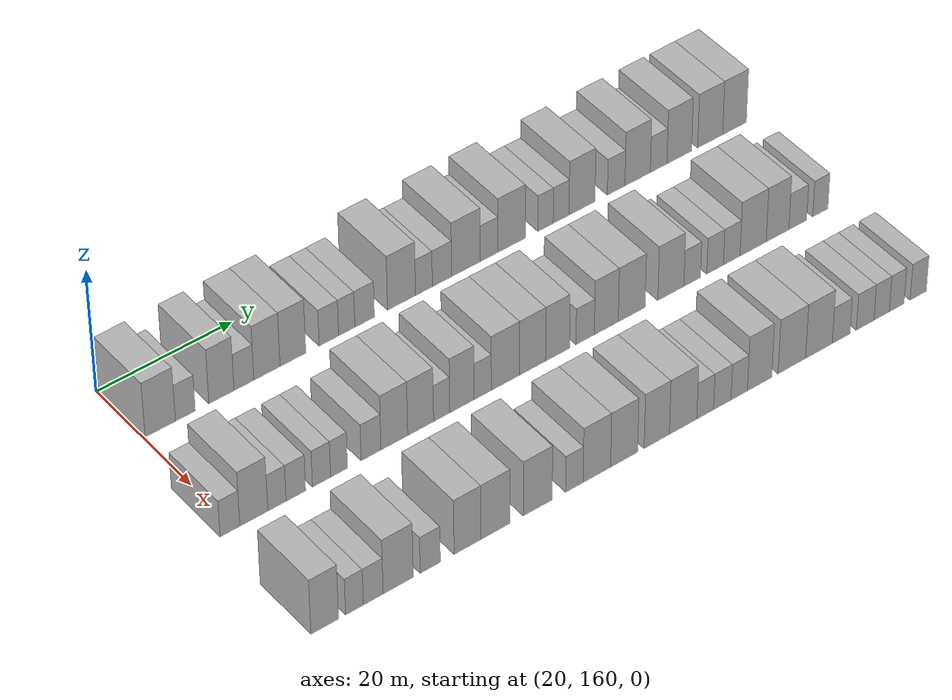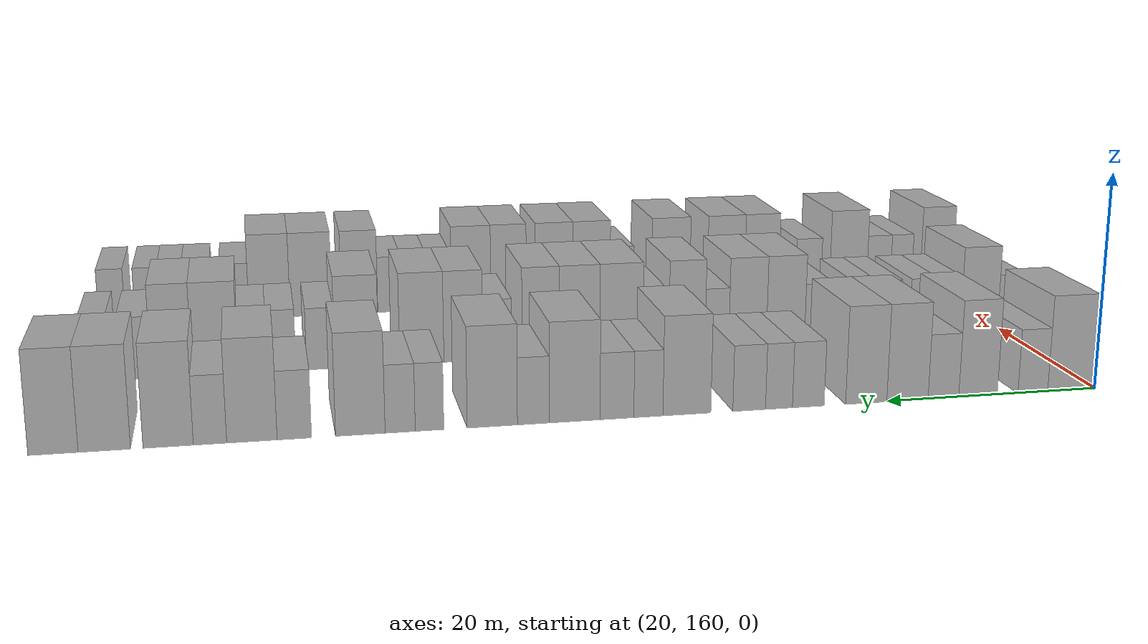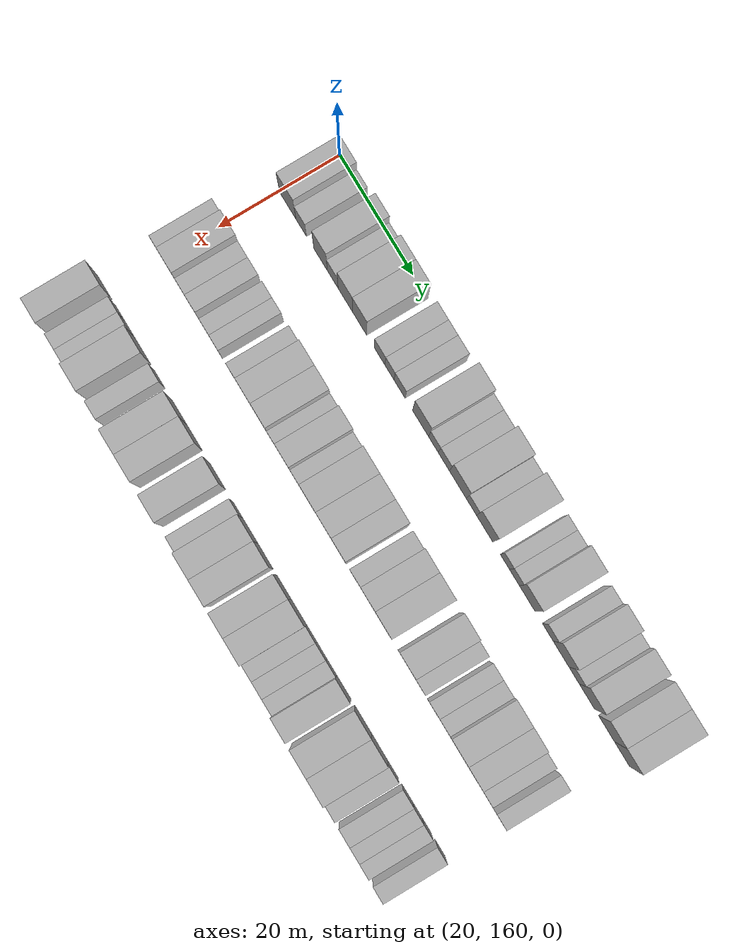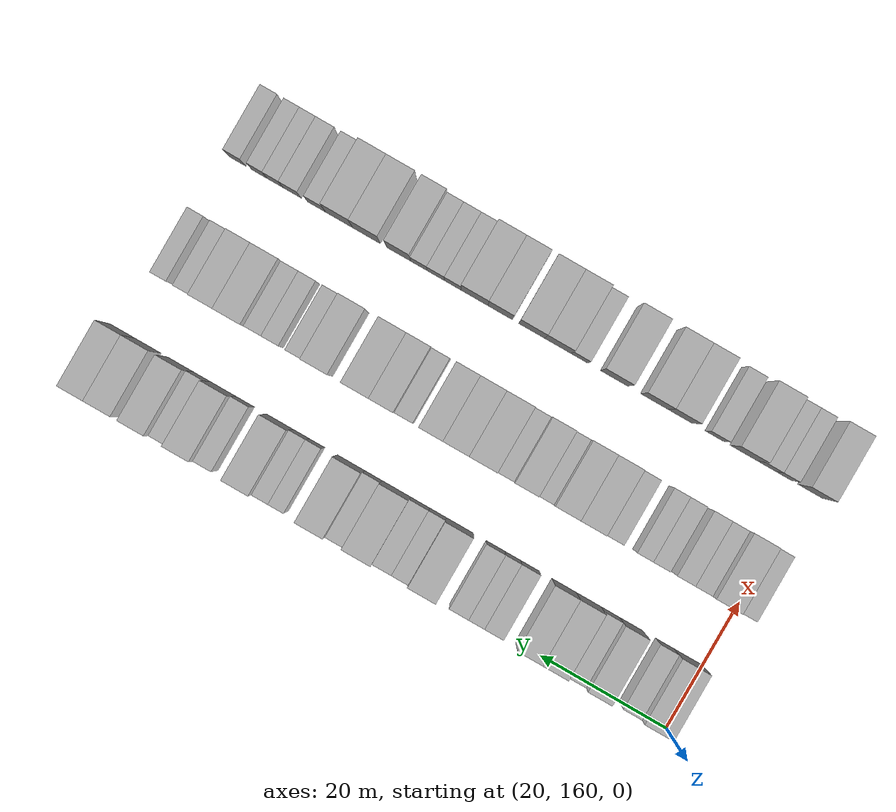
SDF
<sdf version="1.6">
 <world name="default">
  <model name="building_124">
   <static>1</static>
   <pose>25.0000 162.4225 0 0.000000 0.000000 0.000000</pose>
   <link name="link">
    <pose>0 0 4.50 0 0 0</pose>
    <collision name="collision"><geometry><box><size>10.0000 4.4084 9.0000</size></box></geometry></collision>
    <visual name="visual">
     <cast_shadows>0</cast_shadows>
     <geometry><box><size>10.0000 4.4084 9.0000</size></box></geometry>
     <material>
      <script>
       <uri>model://HANNAS_wall/materials/scripts</uri>
       <uri>model://HANNAS_wall/materials/textures</uri>
       <name>vrc/HANNAS_wall</name>
      </script>
     </material>
    </visual>
   </link>
  </model>
  <model name="building_125">
   <static>1</static>
   <pose>25.0000 166.0739 0 0.000000 0.000000 0.000000</pose>
   <link name="link">
    <pose>0 0 3.00 0 0 0</pose>
    <collision name="collision"><geometry><box><size>10.0000 2.8943 6.0000</size></box></geometry></collision>
    <visual name="visual">
     <cast_shadows>0</cast_shadows>
     <geometry><box><size>10.0000 2.8943 6.0000</size></box></geometry>
     <material>
      <script>
       <uri>model://HANNAS_wall/materials/scripts</uri>
       <uri>model://HANNAS_wall/materials/textures</uri>
       <name>vrc/HANNAS_wall</name>
      </script>
     </material>
    </visual>
   </link>
  </model>
  <model name="building_126">
   <static>1</static>
   <pose>25.0000 171.3727 0 0.000000 0.000000 0.000000</pose>
   <link name="link">
    <pose>0 0 4.50 0 0 0</pose>
    <collision name="collision"><geometry><box><size>10.0000 3.7033 9.0000</size></box></geometry></collision>
    <visual name="visual">
     <cast_shadows>0</cast_shadows>
     <geometry><box><size>10.0000 3.7033 9.0000</size></box></geometry>
     <material>
      <script>
       <uri>model://HANNAS_wall/materials/scripts</uri>
       <uri>model://HANNAS_wall/materials/textures</uri>
       <name>vrc/HANNAS_wall</name>
      </script>
     </material>
    </visual>
   </link>
  </model>
  <model name="building_127">
   <static>1</static>
   <pose>25.0000 174.6883 0 0.000000 0.000000 0.000000</pose>
   <link name="link">
    <pose>0 0 3.00 0 0 0</pose>
    <collision name="collision"><geometry><box><size>10.0000 2.9280 6.0000</size></box></geometry></collision>
    <visual name="visual">
     <cast_shadows>0</cast_shadows>
     <geometry><box><size>10.0000 2.9280 6.0000</size></box></geometry>
     <material>
      <script>
       <uri>model://HANNAS_wall/materials/scripts</uri>
       <uri>model://HANNAS_wall/materials/textures</uri>
       <name>vrc/HANNAS_wall</name>
      </script>
     </material>
    </visual>
   </link>
  </model>
  <model name="building_128">
   <static>1</static>
   <pose>25.0000 178.1057 0 0.000000 0.000000 0.000000</pose>
   <link name="link">
    <pose>0 0 4.50 0 0 0</pose>
    <collision name="collision"><geometry><box><size>10.0000 3.9068 9.0000</size></box></geometry></collision>
    <visual name="visual">
     <cast_shadows>0</cast_shadows>
     <geometry><box><size>10.0000 3.9068 9.0000</size></box></geometry>
     <material>
      <script>
       <uri>model://HANNAS_wall/materials/scripts</uri>
       <uri>model://HANNAS_wall/materials/textures</uri>
       <name>vrc/HANNAS_wall</name>
      </script>
     </material>
    </visual>
   </link>
  </model>
  <model name="building_129">
   <static>1</static>
   <pose>25.0000 181.9875 0 0.000000 0.000000 0.000000</pose>
   <link name="link">
    <pose>0 0 4.50 0 0 0</pose>
    <collision name="collision"><geometry><box><size>10.0000 3.8569 9.0000</size></box></geometry></collision>
    <visual name="visual">
     <cast_shadows>0</cast_shadows>
     <geometry><box><size>10.0000 3.8569 9.0000</size></box></geometry>
     <material>
      <script>
       <uri>model://HANNAS_wall/materials/scripts</uri>
       <uri>model://HANNAS_wall/materials/textures</uri>
       <name>vrc/HANNAS_wall</name>
      </script>
     </material>
    </visual>
   </link>
  </model>
  <model name="building_130">
   <static>1</static>
   <pose>25.0000 187.3841 0 0.000000 0.000000 0.000000</pose>
   <link name="link">
    <pose>0 0 3.00 0 0 0</pose>
    <collision name="collision"><geometry><box><size>10.0000 2.9363 6.0000</size></box></geometry></collision>
    <visual name="visual">
     <cast_shadows>0</cast_shadows>
     <geometry><box><size>10.0000 2.9363 6.0000</size></box></geometry>
     <material>
      <script>
       <uri>model://HANNAS_wall/materials/scripts</uri>
       <uri>model://HANNAS_wall/materials/textures</uri>
       <name>vrc/HANNAS_wall</name>
      </script>
     </material>
    </visual>
   </link>
  </model>
  <model name="building_131">
   <static>1</static>
   <pose>25.0000 190.0873 0 0.000000 0.000000 0.000000</pose>
   <link name="link">
    <pose>0 0 3.00 0 0 0</pose>
    <collision name="collision"><geometry><box><size>10.0000 2.4700 6.0000</size></box></geometry></collision>
    <visual name="visual">
     <cast_shadows>0</cast_shadows>
     <geometry><box><size>10.0000 2.4700 6.0000</size></box></geometry>
     <material>
      <script>
       <uri>model://HANNAS_wall/materials/scripts</uri>
       <uri>model://HANNAS_wall/materials/textures</uri>
       <name>vrc/HANNAS_wall</name>
      </script>
     </material>
    </visual>
   </link>
  </model>
  <model name="building_132">
   <static>1</static>
   <pose>25.0000 192.8141 0 0.000000 0.000000 0.000000</pose>
   <link name="link">
    <pose>0 0 3.00 0 0 0</pose>
    <collision name="collision"><geometry><box><size>10.0000 2.9837 6.0000</size></box></geometry></collision>
    <visual name="visual">
     <cast_shadows>0</cast_shadows>
     <geometry><box><size>10.0000 2.9837 6.0000</size></box></geometry>
     <material>
      <script>
       <uri>model://HANNAS_wall/materials/scripts</uri>
       <uri>model://HANNAS_wall/materials/textures</uri>
       <name>vrc/HANNAS_wall</name>
      </script>
     </material>
    </visual>
   </link>
  </model>
  <model name="building_133">
   <static>1</static>
   <pose>25.0000 198.4626 0 0.000000 0.000000 0.000000</pose>
   <link name="link">
    <pose>0 0 4.50 0 0 0</pose>
    <collision name="collision"><geometry><box><size>10.0000 4.3132 9.0000</size></box></geometry></collision>
    <visual name="visual">
     <cast_shadows>0</cast_shadows>
     <geometry><box><size>10.0000 4.3132 9.0000</size></box></geometry>
     <material>
      <script>
       <uri>model://HANNAS_wall/materials/scripts</uri>
       <uri>model://HANNAS_wall/materials/textures</uri>
       <name>vrc/HANNAS_wall</name>
      </script>
     </material>
    </visual>
   </link>
  </model>
  <model name="building_134">
   <static>1</static>
   <pose>25.0000 201.9174 0 0.000000 0.000000 0.000000</pose>
   <link name="link">
    <pose>0 0 3.00 0 0 0</pose>
    <collision name="collision"><geometry><box><size>10.0000 2.5964 6.0000</size></box></geometry></collision>
    <visual name="visual">
     <cast_shadows>0</cast_shadows>
     <geometry><box><size>10.0000 2.5964 6.0000</size></box></geometry>
     <material>
      <script>
       <uri>model://HANNAS_wall/materials/scripts</uri>
       <uri>model://HANNAS_wall/materials/textures</uri>
       <name>vrc/HANNAS_wall</name>
      </script>
     </material>
    </visual>
   </link>
  </model>
  <model name="building_135">
   <static>1</static>
   <pose>25.0000 204.7140 0 0.000000 0.000000 0.000000</pose>
   <link name="link">
    <pose>0 0 3.00 0 0 0</pose>
    <collision name="collision"><geometry><box><size>10.0000 2.9968 6.0000</size></box></geometry></collision>
    <visual name="visual">
     <cast_shadows>0</cast_shadows>
     <geometry><box><size>10.0000 2.9968 6.0000</size></box></geometry>
     <material>
      <script>
       <uri>model://HANNAS_wall/materials/scripts</uri>
       <uri>model://HANNAS_wall/materials/textures</uri>
       <name>vrc/HANNAS_wall</name>
      </script>
     </material>
    </visual>
   </link>
  </model>
  <model name="building_136">
   <static>1</static>
   <pose>25.0000 208.4489 0 0.000000 0.000000 0.000000</pose>
   <link name="link">
    <pose>0 0 4.50 0 0 0</pose>
    <collision name="collision"><geometry><box><size>10.0000 4.4731 9.0000</size></box></geometry></collision>
    <visual name="visual">
     <cast_shadows>0</cast_shadows>
     <geometry><box><size>10.0000 4.4731 9.0000</size></box></geometry>
     <material>
      <script>
       <uri>model://HANNAS_wall/materials/scripts</uri>
       <uri>model://HANNAS_wall/materials/textures</uri>
       <name>vrc/HANNAS_wall</name>
      </script>
     </material>
    </visual>
   </link>
  </model>
  <model name="building_137">
   <static>1</static>
   <pose>25.0000 212.0654 0 0.000000 0.000000 0.000000</pose>
   <link name="link">
    <pose>0 0 3.00 0 0 0</pose>
    <collision name="collision"><geometry><box><size>10.0000 2.7599 6.0000</size></box></geometry></collision>
    <visual name="visual">
     <cast_shadows>0</cast_shadows>
     <geometry><box><size>10.0000 2.7599 6.0000</size></box></geometry>
     <material>
      <script>
       <uri>model://HANNAS_wall/materials/scripts</uri>
       <uri>model://HANNAS_wall/materials/textures</uri>
       <name>vrc/HANNAS_wall</name>
      </script>
     </material>
    </visual>
   </link>
  </model>
  <model name="building_138">
   <static>1</static>
   <pose>25.0000 215.6119 0 0.000000 0.000000 0.000000</pose>
   <link name="link">
    <pose>0 0 4.50 0 0 0</pose>
    <collision name="collision"><geometry><box><size>10.0000 4.3330 9.0000</size></box></geometry></collision>
    <visual name="visual">
     <cast_shadows>0</cast_shadows>
     <geometry><box><size>10.0000 4.3330 9.0000</size></box></geometry>
     <material>
      <script>
       <uri>model://HANNAS_wall/materials/scripts</uri>
       <uri>model://HANNAS_wall/materials/textures</uri>
       <name>vrc/HANNAS_wall</name>
      </script>
     </material>
    </visual>
   </link>
  </model>
  <model name="building_139">
   <static>1</static>
   <pose>25.0000 220.9933 0 0.000000 0.000000 0.000000</pose>
   <link name="link">
    <pose>0 0 3.00 0 0 0</pose>
    <collision name="collision"><geometry><box><size>10.0000 2.4299 6.0000</size></box></geometry></collision>
    <visual name="visual">
     <cast_shadows>0</cast_shadows>
     <geometry><box><size>10.0000 2.4299 6.0000</size></box></geometry>
     <material>
      <script>
       <uri>model://HANNAS_wall/materials/scripts</uri>
       <uri>model://HANNAS_wall/materials/textures</uri>
       <name>vrc/HANNAS_wall</name>
      </script>
     </material>
    </visual>
   </link>
  </model>
  <model name="building_140">
   <static>1</static>
   <pose>25.0000 223.4822 0 0.000000 0.000000 0.000000</pose>
   <link name="link">
    <pose>0 0 3.00 0 0 0</pose>
    <collision name="collision"><geometry><box><size>10.0000 2.5479 6.0000</size></box></geometry></collision>
    <visual name="visual">
     <cast_shadows>0</cast_shadows>
     <geometry><box><size>10.0000 2.5479 6.0000</size></box></geometry>
     <material>
      <script>
       <uri>model://HANNAS_wall/materials/scripts</uri>
       <uri>model://HANNAS_wall/materials/textures</uri>
       <name>vrc/HANNAS_wall</name>
      </script>
     </material>
    </visual>
   </link>
  </model>
  <model name="building_141">
   <static>1</static>
   <pose>25.0000 226.8352 0 0.000000 0.000000 0.000000</pose>
   <link name="link">
    <pose>0 0 4.50 0 0 0</pose>
    <collision name="collision"><geometry><box><size>10.0000 4.1581 9.0000</size></box></geometry></collision>
    <visual name="visual">
     <cast_shadows>0</cast_shadows>
     <geometry><box><size>10.0000 4.1581 9.0000</size></box></geometry>
     <material>
      <script>
       <uri>model://HANNAS_wall/materials/scripts</uri>
       <uri>model://HANNAS_wall/materials/textures</uri>
       <name>vrc/HANNAS_wall</name>
      </script>
     </material>
    </visual>
   </link>
  </model>
  <model name="building_142">
   <static>1</static>
   <pose>25.0000 232.3383 0 0.000000 0.000000 0.000000</pose>
   <link name="link">
    <pose>0 0 3.00 0 0 0</pose>
    <collision name="collision"><geometry><box><size>10.0000 2.8480 6.0000</size></box></geometry></collision>
    <visual name="visual">
     <cast_shadows>0</cast_shadows>
     <geometry><box><size>10.0000 2.8480 6.0000</size></box></geometry>
     <material>
      <script>
       <uri>model://HANNAS_wall/materials/scripts</uri>
       <uri>model://HANNAS_wall/materials/textures</uri>
       <name>vrc/HANNAS_wall</name>
      </script>
     </material>
    </visual>
   </link>
  </model>
  <model name="building_143">
   <static>1</static>
   <pose>25.0000 235.8276 0 0.000000 0.000000 0.000000</pose>
   <link name="link">
    <pose>0 0 4.50 0 0 0</pose>
    <collision name="collision"><geometry><box><size>10.0000 4.1306 9.0000</size></box></geometry></collision>
    <visual name="visual">
     <cast_shadows>0</cast_shadows>
     <geometry><box><size>10.0000 4.1306 9.0000</size></box></geometry>
     <material>
      <script>
       <uri>model://HANNAS_wall/materials/scripts</uri>
       <uri>model://HANNAS_wall/materials/textures</uri>
       <name>vrc/HANNAS_wall</name>
      </script>
     </material>
    </visual>
   </link>
  </model>
  <model name="building_144">
   <static>1</static>
   <pose>25.0000 239.2464 0 0.000000 0.000000 0.000000</pose>
   <link name="link">
    <pose>0 0 3.00 0 0 0</pose>
    <collision name="collision"><geometry><box><size>10.0000 2.7071 6.0000</size></box></geometry></collision>
    <visual name="visual">
     <cast_shadows>0</cast_shadows>
     <geometry><box><size>10.0000 2.7071 6.0000</size></box></geometry>
     <material>
      <script>
       <uri>model://HANNAS_wall/materials/scripts</uri>
       <uri>model://HANNAS_wall/materials/textures</uri>
       <name>vrc/HANNAS_wall</name>
      </script>
     </material>
    </visual>
   </link>
  </model>
  <model name="building_145">
   <static>1</static>
   <pose>25.0000 242.6282 0 0.000000 0.000000 0.000000</pose>
   <link name="link">
    <pose>0 0 4.50 0 0 0</pose>
    <collision name="collision"><geometry><box><size>10.0000 4.0564 9.0000</size></box></geometry></collision>
    <visual name="visual">
     <cast_shadows>0</cast_shadows>
     <geometry><box><size>10.0000 4.0564 9.0000</size></box></geometry>
     <material>
      <script>
       <uri>model://HANNAS_wall/materials/scripts</uri>
       <uri>model://HANNAS_wall/materials/textures</uri>
       <name>vrc/HANNAS_wall</name>
      </script>
     </material>
    </visual>
   </link>
  </model>
  <model name="building_146">
   <static>1</static>
   <pose>25.0000 247.7382 0 0.000000 0.000000 0.000000</pose>
   <link name="link">
    <pose>0 0 4.50 0 0 0</pose>
    <collision name="collision"><geometry><box><size>10.0000 4.1638 9.0000</size></box></geometry></collision>
    <visual name="visual">
     <cast_shadows>0</cast_shadows>
     <geometry><box><size>10.0000 4.1638 9.0000</size></box></geometry>
     <material>
      <script>
       <uri>model://HANNAS_wall/materials/scripts</uri>
       <uri>model://HANNAS_wall/materials/textures</uri>
       <name>vrc/HANNAS_wall</name>
      </script>
     </material>
    </visual>
   </link>
  </model>
  <model name="building_147">
   <static>1</static>
   <pose>25.0000 251.7939 0 0.000000 0.000000 0.000000</pose>
   <link name="link">
    <pose>0 0 4.50 0 0 0</pose>
    <collision name="collision"><geometry><box><size>10.0000 3.9475 9.0000</size></box></geometry></collision>
    <visual name="visual">
     <cast_shadows>0</cast_shadows>
     <geometry><box><size>10.0000 3.9475 9.0000</size></box></geometry>
     <material>
      <script>
       <uri>model://HANNAS_wall/materials/scripts</uri>
       <uri>model://HANNAS_wall/materials/textures</uri>
       <name>vrc/HANNAS_wall</name>
      </script>
     </material>
    </visual>
   </link>
  </model>
  <model name="building_297">
   <static>1</static>
   <pose>44.0000 159.2605 0 0.000000 0.000000 0.000000</pose>
   <link name="link">
    <pose>0 0 3.00 0 0 0</pose>
    <collision name="collision"><geometry><box><size>10.0000 2.8373 6.0000</size></box></geometry></collision>
    <visual name="visual">
     <cast_shadows>0</cast_shadows>
     <geometry><box><size>10.0000 2.8373 6.0000</size></box></geometry>
     <material>
      <script>
       <uri>model://HANNAS_wall/materials/scripts</uri>
       <uri>model://HANNAS_wall/materials/textures</uri>
       <name>vrc/HANNAS_wall</name>
      </script>
     </material>
    </visual>
   </link>
  </model>
  <model name="building_298">
   <static>1</static>
   <pose>44.0000 162.6915 0 0.000000 0.000000 0.000000</pose>
   <link name="link">
    <pose>0 0 4.50 0 0 0</pose>
    <collision name="collision"><geometry><box><size>10.0000 4.0246 9.0000</size></box></geometry></collision>
    <visual name="visual">
     <cast_shadows>0</cast_shadows>
     <geometry><box><size>10.0000 4.0246 9.0000</size></box></geometry>
     <material>
      <script>
       <uri>model://HANNAS_wall/materials/scripts</uri>
       <uri>model://HANNAS_wall/materials/textures</uri>
       <name>vrc/HANNAS_wall</name>
      </script>
     </material>
    </visual>
   </link>
  </model>
  <model name="building_299">
   <static>1</static>
   <pose>44.0000 166.0277 0 0.000000 0.000000 0.000000</pose>
   <link name="link">
    <pose>0 0 3.00 0 0 0</pose>
    <collision name="collision"><geometry><box><size>10.0000 2.6477 6.0000</size></box></geometry></collision>
    <visual name="visual">
     <cast_shadows>0</cast_shadows>
     <geometry><box><size>10.0000 2.6477 6.0000</size></box></geometry>
     <material>
      <script>
       <uri>model://HANNAS_wall/materials/scripts</uri>
       <uri>model://HANNAS_wall/materials/textures</uri>
       <name>vrc/HANNAS_wall</name>
      </script>
     </material>
    </visual>
   </link>
  </model>
  <model name="building_300">
   <static>1</static>
   <pose>44.0000 168.7679 0 0.000000 0.000000 0.000000</pose>
   <link name="link">
    <pose>0 0 3.00 0 0 0</pose>
    <collision name="collision"><geometry><box><size>10.0000 2.8327 6.0000</size></box></geometry></collision>
    <visual name="visual">
     <cast_shadows>0</cast_shadows>
     <geometry><box><size>10.0000 2.8327 6.0000</size></box></geometry>
     <material>
      <script>
       <uri>model://HANNAS_wall/materials/scripts</uri>
       <uri>model://HANNAS_wall/materials/textures</uri>
       <name>vrc/HANNAS_wall</name>
      </script>
     </material>
    </visual>
   </link>
  </model>
  <model name="building_301">
   <static>1</static>
   <pose>44.0000 172.5100 0 0.000000 0.000000 0.000000</pose>
   <link name="link">
    <pose>0 0 3.00 0 0 0</pose>
    <collision name="collision"><geometry><box><size>10.0000 2.6515 6.0000</size></box></geometry></collision>
    <visual name="visual">
     <cast_shadows>0</cast_shadows>
     <geometry><box><size>10.0000 2.6515 6.0000</size></box></geometry>
     <material>
      <script>
       <uri>model://HANNAS_wall/materials/scripts</uri>
       <uri>model://HANNAS_wall/materials/textures</uri>
       <name>vrc/HANNAS_wall</name>
      </script>
     </material>
    </visual>
   </link>
  </model>
  <model name="building_302">
   <static>1</static>
   <pose>44.0000 175.0783 0 0.000000 0.000000 0.000000</pose>
   <link name="link">
    <pose>0 0 3.00 0 0 0</pose>
    <collision name="collision"><geometry><box><size>10.0000 2.4850 6.0000</size></box></geometry></collision>
    <visual name="visual">
     <cast_shadows>0</cast_shadows>
     <geometry><box><size>10.0000 2.4850 6.0000</size></box></geometry>
     <material>
      <script>
       <uri>model://HANNAS_wall/materials/scripts</uri>
       <uri>model://HANNAS_wall/materials/textures</uri>
       <name>vrc/HANNAS_wall</name>
      </script>
     </material>
    </visual>
   </link>
  </model>
  <model name="building_303">
   <static>1</static>
   <pose>44.0000 179.7957 0 0.000000 0.000000 0.000000</pose>
   <link name="link">
    <pose>0 0 3.00 0 0 0</pose>
    <collision name="collision"><geometry><box><size>10.0000 2.9499 6.0000</size></box></geometry></collision>
    <visual name="visual">
     <cast_shadows>0</cast_shadows>
     <geometry><box><size>10.0000 2.9499 6.0000</size></box></geometry>
     <material>
      <script>
       <uri>model://HANNAS_wall/materials/scripts</uri>
       <uri>model://HANNAS_wall/materials/textures</uri>
       <name>vrc/HANNAS_wall</name>
      </script>
     </material>
    </visual>
   </link>
  </model>
  <model name="building_304">
   <static>1</static>
   <pose>44.0000 183.2568 0 0.000000 0.000000 0.000000</pose>
   <link name="link">
    <pose>0 0 4.50 0 0 0</pose>
    <collision name="collision"><geometry><box><size>10.0000 3.9724 9.0000</size></box></geometry></collision>
    <visual name="visual">
     <cast_shadows>0</cast_shadows>
     <geometry><box><size>10.0000 3.9724 9.0000</size></box></geometry>
     <material>
      <script>
       <uri>model://HANNAS_wall/materials/scripts</uri>
       <uri>model://HANNAS_wall/materials/textures</uri>
       <name>vrc/HANNAS_wall</name>
      </script>
     </material>
    </visual>
   </link>
  </model>
  <model name="building_305">
   <static>1</static>
   <pose>44.0000 187.1785 0 0.000000 0.000000 0.000000</pose>
   <link name="link">
    <pose>0 0 4.50 0 0 0</pose>
    <collision name="collision"><geometry><box><size>10.0000 3.8710 9.0000</size></box></geometry></collision>
    <visual name="visual">
     <cast_shadows>0</cast_shadows>
     <geometry><box><size>10.0000 3.8710 9.0000</size></box></geometry>
     <material>
      <script>
       <uri>model://HANNAS_wall/materials/scripts</uri>
       <uri>model://HANNAS_wall/materials/textures</uri>
       <name>vrc/HANNAS_wall</name>
      </script>
     </material>
    </visual>
   </link>
  </model>
  <model name="building_306">
   <static>1</static>
   <pose>44.0000 190.3342 0 0.000000 0.000000 0.000000</pose>
   <link name="link">
    <pose>0 0 3.00 0 0 0</pose>
    <collision name="collision"><geometry><box><size>10.0000 2.4405 6.0000</size></box></geometry></collision>
    <visual name="visual">
     <cast_shadows>0</cast_shadows>
     <geometry><box><size>10.0000 2.4405 6.0000</size></box></geometry>
     <material>
      <script>
       <uri>model://HANNAS_wall/materials/scripts</uri>
       <uri>model://HANNAS_wall/materials/textures</uri>
       <name>vrc/HANNAS_wall</name>
      </script>
     </material>
    </visual>
   </link>
  </model>
  <model name="building_307">
   <static>1</static>
   <pose>44.0000 193.3992 0 0.000000 0.000000 0.000000</pose>
   <link name="link">
    <pose>0 0 4.50 0 0 0</pose>
    <collision name="collision"><geometry><box><size>10.0000 3.6896 9.0000</size></box></geometry></collision>
    <visual name="visual">
     <cast_shadows>0</cast_shadows>
     <geometry><box><size>10.0000 3.6896 9.0000</size></box></geometry>
     <material>
      <script>
       <uri>model://HANNAS_wall/materials/scripts</uri>
       <uri>model://HANNAS_wall/materials/textures</uri>
       <name>vrc/HANNAS_wall</name>
      </script>
     </material>
    </visual>
   </link>
  </model>
  <model name="building_308">
   <static>1</static>
   <pose>44.0000 196.5525 0 0.000000 0.000000 0.000000</pose>
   <link name="link">
    <pose>0 0 3.00 0 0 0</pose>
    <collision name="collision"><geometry><box><size>10.0000 2.6169 6.0000</size></box></geometry></collision>
    <visual name="visual">
     <cast_shadows>0</cast_shadows>
     <geometry><box><size>10.0000 2.6169 6.0000</size></box></geometry>
     <material>
      <script>
       <uri>model://HANNAS_wall/materials/scripts</uri>
       <uri>model://HANNAS_wall/materials/textures</uri>
       <name>vrc/HANNAS_wall</name>
      </script>
     </material>
    </visual>
   </link>
  </model>
  <model name="building_309">
   <static>1</static>
   <pose>44.0000 200.0233 0 0.000000 0.000000 0.000000</pose>
   <link name="link">
    <pose>0 0 4.50 0 0 0</pose>
    <collision name="collision"><geometry><box><size>10.0000 4.3248 9.0000</size></box></geometry></collision>
    <visual name="visual">
     <cast_shadows>0</cast_shadows>
     <geometry><box><size>10.0000 4.3248 9.0000</size></box></geometry>
     <material>
      <script>
       <uri>model://HANNAS_wall/materials/scripts</uri>
       <uri>model://HANNAS_wall/materials/textures</uri>
       <name>vrc/HANNAS_wall</name>
      </script>
     </material>
    </visual>
   </link>
  </model>
  <model name="building_310">
   <static>1</static>
   <pose>44.0000 204.1872 0 0.000000 0.000000 0.000000</pose>
   <link name="link">
    <pose>0 0 4.50 0 0 0</pose>
    <collision name="collision"><geometry><box><size>10.0000 4.0029 9.0000</size></box></geometry></collision>
    <visual name="visual">
     <cast_shadows>0</cast_shadows>
     <geometry><box><size>10.0000 4.0029 9.0000</size></box></geometry>
     <material>
      <script>
       <uri>model://HANNAS_wall/materials/scripts</uri>
       <uri>model://HANNAS_wall/materials/textures</uri>
       <name>vrc/HANNAS_wall</name>
      </script>
     </material>
    </visual>
   </link>
  </model>
  <model name="building_311">
   <static>1</static>
   <pose>44.0000 208.0346 0 0.000000 0.000000 0.000000</pose>
   <link name="link">
    <pose>0 0 4.50 0 0 0</pose>
    <collision name="collision"><geometry><box><size>10.0000 3.6920 9.0000</size></box></geometry></collision>
    <visual name="visual">
     <cast_shadows>0</cast_shadows>
     <geometry><box><size>10.0000 3.6920 9.0000</size></box></geometry>
     <material>
      <script>
       <uri>model://HANNAS_wall/materials/scripts</uri>
       <uri>model://HANNAS_wall/materials/textures</uri>
       <name>vrc/HANNAS_wall</name>
      </script>
     </material>
    </visual>
   </link>
  </model>
  <model name="building_312">
   <static>1</static>
   <pose>44.0000 212.3109 0 0.000000 0.000000 0.000000</pose>
   <link name="link">
    <pose>0 0 3.00 0 0 0</pose>
    <collision name="collision"><geometry><box><size>10.0000 2.8607 6.0000</size></box></geometry></collision>
    <visual name="visual">
     <cast_shadows>0</cast_shadows>
     <geometry><box><size>10.0000 2.8607 6.0000</size></box></geometry>
     <material>
      <script>
       <uri>model://HANNAS_wall/materials/scripts</uri>
       <uri>model://HANNAS_wall/materials/textures</uri>
       <name>vrc/HANNAS_wall</name>
      </script>
     </material>
    </visual>
   </link>
  </model>
  <model name="building_313">
   <static>1</static>
   <pose>44.0000 215.6169 0 0.000000 0.000000 0.000000</pose>
   <link name="link">
    <pose>0 0 4.50 0 0 0</pose>
    <collision name="collision"><geometry><box><size>10.0000 3.7513 9.0000</size></box></geometry></collision>
    <visual name="visual">
     <cast_shadows>0</cast_shadows>
     <geometry><box><size>10.0000 3.7513 9.0000</size></box></geometry>
     <material>
      <script>
       <uri>model://HANNAS_wall/materials/scripts</uri>
       <uri>model://HANNAS_wall/materials/textures</uri>
       <name>vrc/HANNAS_wall</name>
      </script>
     </material>
    </visual>
   </link>
  </model>
  <model name="building_314">
   <static>1</static>
   <pose>44.0000 219.6130 0 0.000000 0.000000 0.000000</pose>
   <link name="link">
    <pose>0 0 4.50 0 0 0</pose>
    <collision name="collision"><geometry><box><size>10.0000 4.2408 9.0000</size></box></geometry></collision>
    <visual name="visual">
     <cast_shadows>0</cast_shadows>
     <geometry><box><size>10.0000 4.2408 9.0000</size></box></geometry>
     <material>
      <script>
       <uri>model://HANNAS_wall/materials/scripts</uri>
       <uri>model://HANNAS_wall/materials/textures</uri>
       <name>vrc/HANNAS_wall</name>
      </script>
     </material>
    </visual>
   </link>
  </model>
  <model name="building_315">
   <static>1</static>
   <pose>44.0000 225.8119 0 0.000000 0.000000 0.000000</pose>
   <link name="link">
    <pose>0 0 4.50 0 0 0</pose>
    <collision name="collision"><geometry><box><size>10.0000 4.1571 9.0000</size></box></geometry></collision>
    <visual name="visual">
     <cast_shadows>0</cast_shadows>
     <geometry><box><size>10.0000 4.1571 9.0000</size></box></geometry>
     <material>
      <script>
       <uri>model://HANNAS_wall/materials/scripts</uri>
       <uri>model://HANNAS_wall/materials/textures</uri>
       <name>vrc/HANNAS_wall</name>
      </script>
     </material>
    </visual>
   </link>
  </model>
  <model name="building_316">
   <static>1</static>
   <pose>44.0000 229.2201 0 0.000000 0.000000 0.000000</pose>
   <link name="link">
    <pose>0 0 3.00 0 0 0</pose>
    <collision name="collision"><geometry><box><size>10.0000 2.6594 6.0000</size></box></geometry></collision>
    <visual name="visual">
     <cast_shadows>0</cast_shadows>
     <geometry><box><size>10.0000 2.6594 6.0000</size></box></geometry>
     <material>
      <script>
       <uri>model://HANNAS_wall/materials/scripts</uri>
       <uri>model://HANNAS_wall/materials/textures</uri>
       <name>vrc/HANNAS_wall</name>
      </script>
     </material>
    </visual>
   </link>
  </model>
  <model name="building_317">
   <static>1</static>
   <pose>44.0000 232.8897 0 0.000000 0.000000 0.000000</pose>
   <link name="link">
    <pose>0 0 3.00 0 0 0</pose>
    <collision name="collision"><geometry><box><size>10.0000 2.6800 6.0000</size></box></geometry></collision>
    <visual name="visual">
     <cast_shadows>0</cast_shadows>
     <geometry><box><size>10.0000 2.6800 6.0000</size></box></geometry>
     <material>
      <script>
       <uri>model://HANNAS_wall/materials/scripts</uri>
       <uri>model://HANNAS_wall/materials/textures</uri>
       <name>vrc/HANNAS_wall</name>
      </script>
     </material>
    </visual>
   </link>
  </model>
  <model name="building_318">
   <static>1</static>
   <pose>44.0000 235.5751 0 0.000000 0.000000 0.000000</pose>
   <link name="link">
    <pose>0 0 3.00 0 0 0</pose>
    <collision name="collision"><geometry><box><size>10.0000 2.6907 6.0000</size></box></geometry></collision>
    <visual name="visual">
     <cast_shadows>0</cast_shadows>
     <geometry><box><size>10.0000 2.6907 6.0000</size></box></geometry>
     <material>
      <script>
       <uri>model://HANNAS_wall/materials/scripts</uri>
       <uri>model://HANNAS_wall/materials/textures</uri>
       <name>vrc/HANNAS_wall</name>
      </script>
     </material>
    </visual>
   </link>
  </model>
  <model name="building_319">
   <static>1</static>
   <pose>44.0000 239.0456 0 0.000000 0.000000 0.000000</pose>
   <link name="link">
    <pose>0 0 4.50 0 0 0</pose>
    <collision name="collision"><geometry><box><size>10.0000 4.2503 9.0000</size></box></geometry></collision>
    <visual name="visual">
     <cast_shadows>0</cast_shadows>
     <geometry><box><size>10.0000 4.2503 9.0000</size></box></geometry>
     <material>
      <script>
       <uri>model://HANNAS_wall/materials/scripts</uri>
       <uri>model://HANNAS_wall/materials/textures</uri>
       <name>vrc/HANNAS_wall</name>
      </script>
     </material>
    </visual>
   </link>
  </model>
  <model name="building_320">
   <static>1</static>
   <pose>44.0000 243.0319 0 0.000000 0.000000 0.000000</pose>
   <link name="link">
    <pose>0 0 4.50 0 0 0</pose>
    <collision name="collision"><geometry><box><size>10.0000 3.7223 9.0000</size></box></geometry></collision>
    <visual name="visual">
     <cast_shadows>0</cast_shadows>
     <geometry><box><size>10.0000 3.7223 9.0000</size></box></geometry>
     <material>
      <script>
       <uri>model://HANNAS_wall/materials/scripts</uri>
       <uri>model://HANNAS_wall/materials/textures</uri>
       <name>vrc/HANNAS_wall</name>
      </script>
     </material>
    </visual>
   </link>
  </model>
  <model name="building_321">
   <static>1</static>
   <pose>44.0000 246.3574 0 0.000000 0.000000 0.000000</pose>
   <link name="link">
    <pose>0 0 3.00 0 0 0</pose>
    <collision name="collision"><geometry><box><size>10.0000 2.9287 6.0000</size></box></geometry></collision>
    <visual name="visual">
     <cast_shadows>0</cast_shadows>
     <geometry><box><size>10.0000 2.9287 6.0000</size></box></geometry>
     <material>
      <script>
       <uri>model://HANNAS_wall/materials/scripts</uri>
       <uri>model://HANNAS_wall/materials/textures</uri>
       <name>vrc/HANNAS_wall</name>
      </script>
     </material>
    </visual>
   </link>
  </model>
  <model name="building_322">
   <static>1</static>
   <pose>44.0000 250.0694 0 0.000000 0.000000 0.000000</pose>
   <link name="link">
    <pose>0 0 3.00 0 0 0</pose>
    <collision name="collision"><geometry><box><size>10.0000 2.4954 6.0000</size></box></geometry></collision>
    <visual name="visual">
     <cast_shadows>0</cast_shadows>
     <geometry><box><size>10.0000 2.4954 6.0000</size></box></geometry>
     <material>
      <script>
       <uri>model://HANNAS_wall/materials/scripts</uri>
       <uri>model://HANNAS_wall/materials/textures</uri>
       <name>vrc/HANNAS_wall</name>
      </script>
     </material>
    </visual>
   </link>
  </model>
  <model name="building_463">
   <static>1</static>
   <pose>63.0000 159.1948 0 0.000000 0.000000 0.000000</pose>
   <link name="link">
    <pose>0 0 4.50 0 0 0</pose>
    <collision name="collision"><geometry><box><size>10.0000 3.9217 9.0000</size></box></geometry></collision>
    <visual name="visual">
     <cast_shadows>0</cast_shadows>
     <geometry><box><size>10.0000 3.9217 9.0000</size></box></geometry>
     <material>
      <script>
       <uri>model://HANNAS_wall/materials/scripts</uri>
       <uri>model://HANNAS_wall/materials/textures</uri>
       <name>vrc/HANNAS_wall</name>
      </script>
     </material>
    </visual>
   </link>
  </model>
  <model name="building_464">
   <static>1</static>
   <pose>63.0000 163.4258 0 0.000000 0.000000 0.000000</pose>
   <link name="link">
    <pose>0 0 3.00 0 0 0</pose>
    <collision name="collision"><geometry><box><size>10.0000 2.5404 6.0000</size></box></geometry></collision>
    <visual name="visual">
     <cast_shadows>0</cast_shadows>
     <geometry><box><size>10.0000 2.5404 6.0000</size></box></geometry>
     <material>
      <script>
       <uri>model://HANNAS_wall/materials/scripts</uri>
       <uri>model://HANNAS_wall/materials/textures</uri>
       <name>vrc/HANNAS_wall</name>
      </script>
     </material>
    </visual>
   </link>
  </model>
  <model name="building_465">
   <static>1</static>
   <pose>63.0000 166.1069 0 0.000000 0.000000 0.000000</pose>
   <link name="link">
    <pose>0 0 3.00 0 0 0</pose>
    <collision name="collision"><geometry><box><size>10.0000 2.8217 6.0000</size></box></geometry></collision>
    <visual name="visual">
     <cast_shadows>0</cast_shadows>
     <geometry><box><size>10.0000 2.8217 6.0000</size></box></geometry>
     <material>
      <script>
       <uri>model://HANNAS_wall/materials/scripts</uri>
       <uri>model://HANNAS_wall/materials/textures</uri>
       <name>vrc/HANNAS_wall</name>
      </script>
     </material>
    </visual>
   </link>
  </model>
  <model name="building_466">
   <static>1</static>
   <pose>63.0000 169.6983 0 0.000000 0.000000 0.000000</pose>
   <link name="link">
    <pose>0 0 4.50 0 0 0</pose>
    <collision name="collision"><geometry><box><size>10.0000 4.3612 9.0000</size></box></geometry></collision>
    <visual name="visual">
     <cast_shadows>0</cast_shadows>
     <geometry><box><size>10.0000 4.3612 9.0000</size></box></geometry>
     <material>
      <script>
       <uri>model://HANNAS_wall/materials/scripts</uri>
       <uri>model://HANNAS_wall/materials/textures</uri>
       <name>vrc/HANNAS_wall</name>
      </script>
     </material>
    </visual>
   </link>
  </model>
  <model name="building_467">
   <static>1</static>
   <pose>63.0000 174.3480 0 0.000000 0.000000 0.000000</pose>
   <link name="link">
    <pose>0 0 3.00 0 0 0</pose>
    <collision name="collision"><geometry><box><size>10.0000 2.9381 6.0000</size></box></geometry></collision>
    <visual name="visual">
     <cast_shadows>0</cast_shadows>
     <geometry><box><size>10.0000 2.9381 6.0000</size></box></geometry>
     <material>
      <script>
       <uri>model://HANNAS_wall/materials/scripts</uri>
       <uri>model://HANNAS_wall/materials/textures</uri>
       <name>vrc/HANNAS_wall</name>
      </script>
     </material>
    </visual>
   </link>
  </model>
  <model name="building_468">
   <static>1</static>
   <pose>63.0000 179.7918 0 0.000000 0.000000 0.000000</pose>
   <link name="link">
    <pose>0 0 4.50 0 0 0</pose>
    <collision name="collision"><geometry><box><size>10.0000 3.9495 9.0000</size></box></geometry></collision>
    <visual name="visual">
     <cast_shadows>0</cast_shadows>
     <geometry><box><size>10.0000 3.9495 9.0000</size></box></geometry>
     <material>
      <script>
       <uri>model://HANNAS_wall/materials/scripts</uri>
       <uri>model://HANNAS_wall/materials/textures</uri>
       <name>vrc/HANNAS_wall</name>
      </script>
     </material>
    </visual>
   </link>
  </model>
  <model name="building_469">
   <static>1</static>
   <pose>63.0000 183.8932 0 0.000000 0.000000 0.000000</pose>
   <link name="link">
    <pose>0 0 4.50 0 0 0</pose>
    <collision name="collision"><geometry><box><size>10.0000 4.2532 9.0000</size></box></geometry></collision>
    <visual name="visual">
     <cast_shadows>0</cast_shadows>
     <geometry><box><size>10.0000 4.2532 9.0000</size></box></geometry>
     <material>
      <script>
       <uri>model://HANNAS_wall/materials/scripts</uri>
       <uri>model://HANNAS_wall/materials/textures</uri>
       <name>vrc/HANNAS_wall</name>
      </script>
     </material>
    </visual>
   </link>
  </model>
  <model name="building_470">
   <static>1</static>
   <pose>63.0000 190.1856 0 0.000000 0.000000 0.000000</pose>
   <link name="link">
    <pose>0 0 4.50 0 0 0</pose>
    <collision name="collision"><geometry><box><size>10.0000 4.3317 9.0000</size></box></geometry></collision>
    <visual name="visual">
     <cast_shadows>0</cast_shadows>
     <geometry><box><size>10.0000 4.3317 9.0000</size></box></geometry>
     <material>
      <script>
       <uri>model://HANNAS_wall/materials/scripts</uri>
       <uri>model://HANNAS_wall/materials/textures</uri>
       <name>vrc/HANNAS_wall</name>
      </script>
     </material>
    </visual>
   </link>
  </model>
  <model name="building_471">
   <static>1</static>
   <pose>63.0000 195.6733 0 0.000000 0.000000 0.000000</pose>
   <link name="link">
    <pose>0 0 3.00 0 0 0</pose>
    <collision name="collision"><geometry><box><size>10.0000 2.6436 6.0000</size></box></geometry></collision>
    <visual name="visual">
     <cast_shadows>0</cast_shadows>
     <geometry><box><size>10.0000 2.6436 6.0000</size></box></geometry>
     <material>
      <script>
       <uri>model://HANNAS_wall/materials/scripts</uri>
       <uri>model://HANNAS_wall/materials/textures</uri>
       <name>vrc/HANNAS_wall</name>
      </script>
     </material>
    </visual>
   </link>
  </model>
  <model name="building_472">
   <static>1</static>
   <pose>63.0000 199.0756 0 0.000000 0.000000 0.000000</pose>
   <link name="link">
    <pose>0 0 4.50 0 0 0</pose>
    <collision name="collision"><geometry><box><size>10.0000 4.1610 9.0000</size></box></geometry></collision>
    <visual name="visual">
     <cast_shadows>0</cast_shadows>
     <geometry><box><size>10.0000 4.1610 9.0000</size></box></geometry>
     <material>
      <script>
       <uri>model://HANNAS_wall/materials/scripts</uri>
       <uri>model://HANNAS_wall/materials/textures</uri>
       <name>vrc/HANNAS_wall</name>
      </script>
     </material>
    </visual>
   </link>
  </model>
  <model name="building_473">
   <static>1</static>
   <pose>63.0000 203.2087 0 0.000000 0.000000 0.000000</pose>
   <link name="link">
    <pose>0 0 4.50 0 0 0</pose>
    <collision name="collision"><geometry><box><size>10.0000 4.1051 9.0000</size></box></geometry></collision>
    <visual name="visual">
     <cast_shadows>0</cast_shadows>
     <geometry><box><size>10.0000 4.1051 9.0000</size></box></geometry>
     <material>
      <script>
       <uri>model://HANNAS_wall/materials/scripts</uri>
       <uri>model://HANNAS_wall/materials/textures</uri>
       <name>vrc/HANNAS_wall</name>
      </script>
     </material>
    </visual>
   </link>
  </model>
  <model name="building_474">
   <static>1</static>
   <pose>63.0000 208.1977 0 0.000000 0.000000 0.000000</pose>
   <link name="link">
    <pose>0 0 4.50 0 0 0</pose>
    <collision name="collision"><geometry><box><size>10.0000 3.8730 9.0000</size></box></geometry></collision>
    <visual name="visual">
     <cast_shadows>0</cast_shadows>
     <geometry><box><size>10.0000 3.8730 9.0000</size></box></geometry>
     <material>
      <script>
       <uri>model://HANNAS_wall/materials/scripts</uri>
       <uri>model://HANNAS_wall/materials/textures</uri>
       <name>vrc/HANNAS_wall</name>
      </script>
     </material>
    </visual>
   </link>
  </model>
  <model name="building_475">
   <static>1</static>
   <pose>63.0000 212.2590 0 0.000000 0.000000 0.000000</pose>
   <link name="link">
    <pose>0 0 4.50 0 0 0</pose>
    <collision name="collision"><geometry><box><size>10.0000 4.2495 9.0000</size></box></geometry></collision>
    <visual name="visual">
     <cast_shadows>0</cast_shadows>
     <geometry><box><size>10.0000 4.2495 9.0000</size></box></geometry>
     <material>
      <script>
       <uri>model://HANNAS_wall/materials/scripts</uri>
       <uri>model://HANNAS_wall/materials/textures</uri>
       <name>vrc/HANNAS_wall</name>
      </script>
     </material>
    </visual>
   </link>
  </model>
  <model name="building_476">
   <static>1</static>
   <pose>63.0000 215.6875 0 0.000000 0.000000 0.000000</pose>
   <link name="link">
    <pose>0 0 3.00 0 0 0</pose>
    <collision name="collision"><geometry><box><size>10.0000 2.6076 6.0000</size></box></geometry></collision>
    <visual name="visual">
     <cast_shadows>0</cast_shadows>
     <geometry><box><size>10.0000 2.6076 6.0000</size></box></geometry>
     <material>
      <script>
       <uri>model://HANNAS_wall/materials/scripts</uri>
       <uri>model://HANNAS_wall/materials/textures</uri>
       <name>vrc/HANNAS_wall</name>
      </script>
     </material>
    </visual>
   </link>
  </model>
  <model name="building_477">
   <static>1</static>
   <pose>63.0000 218.3511 0 0.000000 0.000000 0.000000</pose>
   <link name="link">
    <pose>0 0 3.00 0 0 0</pose>
    <collision name="collision"><geometry><box><size>10.0000 2.7198 6.0000</size></box></geometry></collision>
    <visual name="visual">
     <cast_shadows>0</cast_shadows>
     <geometry><box><size>10.0000 2.7198 6.0000</size></box></geometry>
     <material>
      <script>
       <uri>model://HANNAS_wall/materials/scripts</uri>
       <uri>model://HANNAS_wall/materials/textures</uri>
       <name>vrc/HANNAS_wall</name>
      </script>
     </material>
    </visual>
   </link>
  </model>
  <model name="building_478">
   <static>1</static>
   <pose>63.0000 221.0023 0 0.000000 0.000000 0.000000</pose>
   <link name="link">
    <pose>0 0 3.00 0 0 0</pose>
    <collision name="collision"><geometry><box><size>10.0000 2.5825 6.0000</size></box></geometry></collision>
    <visual name="visual">
     <cast_shadows>0</cast_shadows>
     <geometry><box><size>10.0000 2.5825 6.0000</size></box></geometry>
     <material>
      <script>
       <uri>model://HANNAS_wall/materials/scripts</uri>
       <uri>model://HANNAS_wall/materials/textures</uri>
       <name>vrc/HANNAS_wall</name>
      </script>
     </material>
    </visual>
   </link>
  </model>
  <model name="building_479">
   <static>1</static>
   <pose>63.0000 224.2109 0 0.000000 0.000000 0.000000</pose>
   <link name="link">
    <pose>0 0 4.50 0 0 0</pose>
    <collision name="collision"><geometry><box><size>10.0000 3.8347 9.0000</size></box></geometry></collision>
    <visual name="visual">
     <cast_shadows>0</cast_shadows>
     <geometry><box><size>10.0000 3.8347 9.0000</size></box></geometry>
     <material>
      <script>
       <uri>model://HANNAS_wall/materials/scripts</uri>
       <uri>model://HANNAS_wall/materials/textures</uri>
       <name>vrc/HANNAS_wall</name>
      </script>
     </material>
    </visual>
   </link>
  </model>
  <model name="building_480">
   <static>1</static>
   <pose>63.0000 229.3198 0 0.000000 0.000000 0.000000</pose>
   <link name="link">
    <pose>0 0 4.50 0 0 0</pose>
    <collision name="collision"><geometry><box><size>10.0000 4.3832 9.0000</size></box></geometry></collision>
    <visual name="visual">
     <cast_shadows>0</cast_shadows>
     <geometry><box><size>10.0000 4.3832 9.0000</size></box></geometry>
     <material>
      <script>
       <uri>model://HANNAS_wall/materials/scripts</uri>
       <uri>model://HANNAS_wall/materials/textures</uri>
       <name>vrc/HANNAS_wall</name>
      </script>
     </material>
    </visual>
   </link>
  </model>
  <model name="building_481">
   <static>1</static>
   <pose>63.0000 233.6484 0 0.000000 0.000000 0.000000</pose>
   <link name="link">
    <pose>0 0 4.50 0 0 0</pose>
    <collision name="collision"><geometry><box><size>10.0000 4.2740 9.0000</size></box></geometry></collision>
    <visual name="visual">
     <cast_shadows>0</cast_shadows>
     <geometry><box><size>10.0000 4.2740 9.0000</size></box></geometry>
     <material>
      <script>
       <uri>model://HANNAS_wall/materials/scripts</uri>
       <uri>model://HANNAS_wall/materials/textures</uri>
       <name>vrc/HANNAS_wall</name>
      </script>
     </material>
    </visual>
   </link>
  </model>
  <model name="building_482">
   <static>1</static>
   <pose>63.0000 237.2134 0 0.000000 0.000000 0.000000</pose>
   <link name="link">
    <pose>0 0 3.00 0 0 0</pose>
    <collision name="collision"><geometry><box><size>10.0000 2.8559 6.0000</size></box></geometry></collision>
    <visual name="visual">
     <cast_shadows>0</cast_shadows>
     <geometry><box><size>10.0000 2.8559 6.0000</size></box></geometry>
     <material>
      <script>
       <uri>model://HANNAS_wall/materials/scripts</uri>
       <uri>model://HANNAS_wall/materials/textures</uri>
       <name>vrc/HANNAS_wall</name>
      </script>
     </material>
    </visual>
   </link>
  </model>
  <model name="building_483">
   <static>1</static>
   <pose>63.0000 241.0790 0 0.000000 0.000000 0.000000</pose>
   <link name="link">
    <pose>0 0 3.00 0 0 0</pose>
    <collision name="collision"><geometry><box><size>10.0000 2.8753 6.0000</size></box></geometry></collision>
    <visual name="visual">
     <cast_shadows>0</cast_shadows>
     <geometry><box><size>10.0000 2.8753 6.0000</size></box></geometry>
     <material>
      <script>
       <uri>model://HANNAS_wall/materials/scripts</uri>
       <uri>model://HANNAS_wall/materials/textures</uri>
       <name>vrc/HANNAS_wall</name>
      </script>
     </material>
    </visual>
   </link>
  </model>
  <model name="building_484">
   <static>1</static>
   <pose>63.0000 243.7598 0 0.000000 0.000000 0.000000</pose>
   <link name="link">
    <pose>0 0 3.00 0 0 0</pose>
    <collision name="collision"><geometry><box><size>10.0000 2.4862 6.0000</size></box></geometry></collision>
    <visual name="visual">
     <cast_shadows>0</cast_shadows>
     <geometry><box><size>10.0000 2.4862 6.0000</size></box></geometry>
     <material>
      <script>
       <uri>model://HANNAS_wall/materials/scripts</uri>
       <uri>model://HANNAS_wall/materials/textures</uri>
       <name>vrc/HANNAS_wall</name>
      </script>
     </material>
    </visual>
   </link>
  </model>
  <model name="building_485">
   <static>1</static>
   <pose>63.0000 246.2090 0 0.000000 0.000000 0.000000</pose>
   <link name="link">
    <pose>0 0 3.00 0 0 0</pose>
    <collision name="collision"><geometry><box><size>10.0000 2.4122 6.0000</size></box></geometry></collision>
    <visual name="visual">
     <cast_shadows>0</cast_shadows>
     <geometry><box><size>10.0000 2.4122 6.0000</size></box></geometry>
     <material>
      <script>
       <uri>model://HANNAS_wall/materials/scripts</uri>
       <uri>model://HANNAS_wall/materials/textures</uri>
       <name>vrc/HANNAS_wall</name>
      </script>
     </material>
    </visual>
   </link>
  </model>
  <model name="building_486">
   <static>1</static>
   <pose>63.0000 249.7377 0 0.000000 0.000000 0.000000</pose>
   <link name="link">
    <pose>0 0 3.00 0 0 0</pose>
    <collision name="collision"><geometry><box><size>10.0000 2.6452 6.0000</size></box></geometry></collision>
    <visual name="visual">
     <cast_shadows>0</cast_shadows>
     <geometry><box><size>10.0000 2.6452 6.0000</size></box></geometry>
     <material>
      <script>
       <uri>model://HANNAS_wall/materials/scripts</uri>
       <uri>model://HANNAS_wall/materials/textures</uri>
       <name>vrc/HANNAS_wall</name>
      </script>
     </material>
    </visual>
   </link>
  </model>
 </world>
</sdf>
